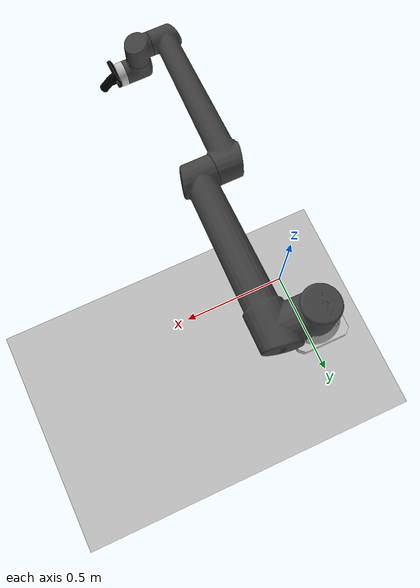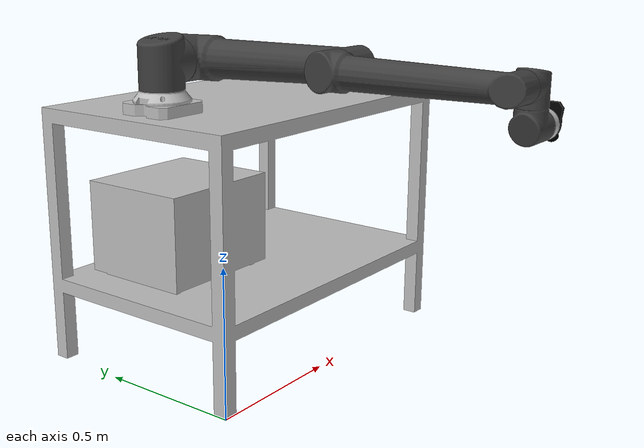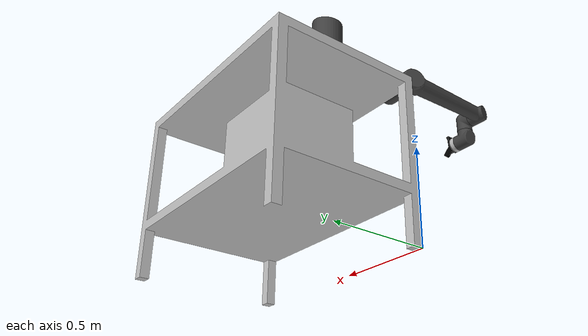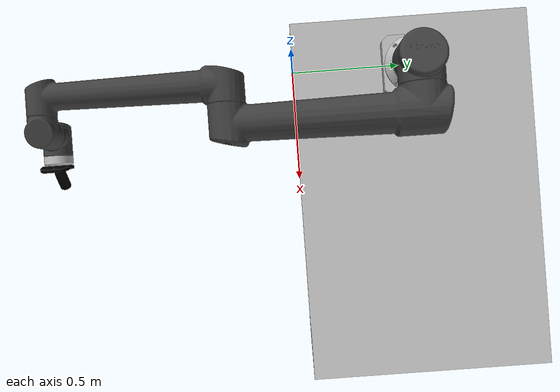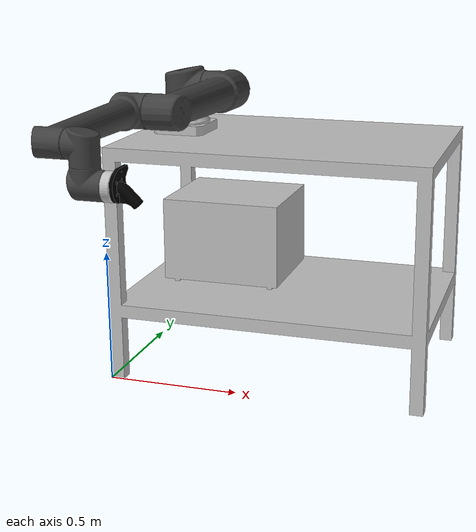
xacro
<?xml version="1.0" encoding="utf-8" ?>
<!-- ur10_description_v3.urdf -->

<robot name="ur10_description_v3" xmlns:xacro="http://ros.org/wiki/xacro">

    <xacro:property name="deg_to_rad" value="0.017453292519943295" />
    <xacro:include filename="$(find ur10_description_v3)/urdf/ft_sensor.gazebo.xacro"/>
    <xacro:include filename="$(find ur10_description_v3)/urdf/kinetic_rgbd.urdf.xacro"/>
    <xacro:include filename="$(find ur10_description_v3)/urdf/kinetic_rgbd.gazebo.xacro"/>

    <xacro:macro name="ur10_robot" params="">

        <link name="table_link">
            <inertial>
                <origin xyz="0.503679778923471 0.436750246454337 0.533162239913515" rpy="0 0 0" />
                <mass value="164.427518164029" />
                <inertia ixx="17.5438109681455" ixy="1.00173029919582" ixz="-0.84554880731535" iyy="27.9962527469498" iyz="0.32261270489944" izz="25.3196927520228" />
            </inertial>
            <visual>
                <origin xyz="0 0 0" rpy="0 0 0" />
                <geometry>
                    <mesh filename="package://ur10_description_v3/meshes/table_link.STL" />
                </geometry>
                <material name="">
                    <color rgba="0.752941176470588 0.752941176470588 0.752941176470588 1" />
                </material>
            </visual>
            <collision>
                <origin xyz="0 0 0" rpy="0 0 0" />
                <geometry>
                    <mesh filename="package://ur10_description_v3/meshes/table_link.STL" />
                </geometry>
            </collision>
        </link>
        <link name="adapter_link">
            <inertial>
                <origin xyz="0.00148762870939384 -5.55111512312578E-17 0.0184969952138566" rpy="0 0 0" />
                <mass value="1.3940393775037" />
                <inertia ixx="0.00480218257555222" ixy="-3.32761202584861E-19" ixz="-6.23136456619299E-09" iyy="0.00460995913579551" iyz="-9.9318015210222E-20" izz="0.00909416459764461" />
            </inertial>
            <visual>
                <origin xyz="0 0 0" rpy="0 0 0" />
                <geometry>
                    <mesh filename="package://ur10_description_v3/meshes/adapter_link.STL" />
                </geometry>
                <material name="">
                    <color rgba="0.752941176470588 0.752941176470588 0.752941176470588 1" />
                </material>
            </visual>
            <collision>
                <origin xyz="0 0 0" rpy="0 0 0" />
                <geometry>
                    <mesh filename="package://ur10_description_v3/meshes/adapter_link.STL" />
                </geometry>
            </collision>
        </link>
        <joint name="adapter_joint" type="fixed">
            <origin xyz="0.17 0.4 0.9" rpy="0 0 0" />
            <parent link="table_link" />
            <child link="adapter_link" />
            <axis xyz="0 0 0" />
        </joint>
        <link name="base_link">
            <inertial>
                <origin xyz="0.0011845 -2.7253E-08 0.017325" rpy="0 0 0" />
                <mass value="0.86268" />
                <inertia ixx="0.0017501" ixy="8.3495E-09" ixz="9.0593E-06" iyy="0.0016637" iyz="-4.5806E-10" izz="0.0032119" />
            </inertial>
            <visual>
                <origin xyz="0 0 0" rpy="0 0 0" />
                <geometry>
                    <mesh filename="package://ur10_description_v3/meshes/base_link.STL" />
                </geometry>
                <material name="">
                    <color rgba="0.75294 0.75294 0.75294 1" />
                </material>
            </visual>
            <collision>
                <origin xyz="0 0 0" rpy="0 0 0" />
                <geometry>
                    <mesh filename="package://ur10_description_v3/meshes/base_link.STL" />
                </geometry>
            </collision>
        </link>
        <joint name="base_joint" type="fixed">
            <origin xyz="0 0 0.037" rpy="0 0 0" />
            <parent link="adapter_link" />
            <child link="base_link" />
            <axis xyz="0 0 0" />
        </joint>
        <link name="shoulder_link">
            <inertial>
                <origin xyz="2.679E-07 0.010024 0.0831" rpy="0 0 0" />
                <mass value="7.778" />
                <inertia ixx="0.012906" ixy="1.6076E-08" ixz="-3.7079E-08" iyy="0.012039" iyz="-0.00053627" izz="0.010755" />
            </inertial>
            <visual>
                <origin xyz="0 0 0" rpy="0 0 0" />
                <geometry>
                    <mesh filename="package://ur10_description_v3/meshes/shoulder_link.STL" />
                </geometry>
                <material name="">
                    <color rgba="0.25098 0.25098 0.25098 1" />
                </material>
            </visual>
            <collision>
                <origin xyz="0 0 0" rpy="0 0 0" />
                <geometry>
                    <mesh filename="package://ur10_description_v3/meshes/shoulder_link.STL" />
                </geometry>
            </collision>
        </link>
        <joint name="shoulder_pan_joint" type="revolute">
            <origin xyz="0 0 0.038" rpy="0 0 -1.57" />
            <parent link="base_link" />
            <child link="shoulder_link" />
            <axis xyz="0 0 1" />
            <limit lower="-6.28" upper="6.28" effort="330" velocity="120" />
        </joint>
        <link name="upper_arm_link">
            <inertial>
                <origin xyz="-0.25443 -2.027E-07 0.082537" rpy="0 0 0" />
                <mass value="12.93" />
                <inertia ixx="0.024456" ixy="3.1971E-08" ixz="0.0078193" iyy="0.52575" iyz="8.3512E-08" izz="0.52417" />
            </inertial>
            <visual>
                <origin xyz="0 0 0" rpy="0 0 0" />
                <geometry>
                    <mesh filename="package://ur10_description_v3/meshes/upper_arm_link.STL" />
                </geometry>
                <material name="">
                    <color rgba="0.25098 0.25098 0.25098 1" />
                </material>
            </visual>
            <collision>
                <origin xyz="0 0 0" rpy="0 0 0" />
                <geometry>
                    <mesh filename="package://ur10_description_v3/meshes/upper_arm_link.STL" />
                </geometry>
            </collision>
        </link>
        <joint name="shoulder_lift_joint" type="revolute">
            <origin xyz="0 0.0859989999999999 0.0882571802206784" rpy="1.5707963267949 0.0240929901040578 3.14159265358979" />
            <parent link="shoulder_link" />
            <child link="upper_arm_link" />
            <axis xyz="0 0 1" />
            <limit lower="-6.28" upper="6.28" effort="330" velocity="120" />
        </joint>
        <link name="forearm_link">
            <inertial>
                <origin xyz="-0.24807 1.9251E-09 -0.034936" rpy="0 0 0" />
                <mass value="3.87" />
                <inertia ixx="0.0067905" ixy="5.4328E-08" ixz="-0.00025402" iyy="0.20899" iyz="7.4389E-09" izz="0.20875" />
            </inertial>
            <visual>
                <origin xyz="0 0 0" rpy="0 0 0" />
                <geometry>
                    <mesh filename="package://ur10_description_v3/meshes/forearm_link.STL" />
                </geometry>
                <material name="">
                    <color rgba="0.25098 0.25098 0.25098 1" />
                </material>
            </visual>
            <collision>
                <origin xyz="0 0 0" rpy="0 0 0" />
                <geometry>
                    <mesh filename="package://ur10_description_v3/meshes/forearm_link.STL" />
                </geometry>
            </collision>
        </link>
        <joint name="elbow_joint" type="revolute">
            <origin xyz="-0.612 0 0" rpy="0 0 0.0242666741712824" />
            <parent link="upper_arm_link" />
            <child link="forearm_link" />
            <axis xyz="0 0 1" />
            <limit lower="-3.14" upper="3.14" effort="150" velocity="180" />
        </joint>
        <link name="wrist_1_link">
            <inertial>
                <origin xyz="8.3814E-09 -0.010045 0.046994" rpy="0 0 0" />
                <mass value="1.96" />
                <inertia ixx="0.0010747" ixy="-1.3405E-12" ixz="4.6386E-10" iyy="0.00088168" iyz="7.862E-05" izz="0.00098347" />
            </inertial>
            <visual>
                <origin xyz="0 0 0" rpy="0 0 0" />
                <geometry>
                    <mesh filename="package://ur10_description_v3/meshes/wrist_1_link.STL" />
                </geometry>
                <material name="">
                    <color rgba="0.25098 0.25098 0.25098 1" />
                </material>
            </visual>
            <collision>
                <origin xyz="0 0 0" rpy="0 0 0" />
                <geometry>
                    <mesh filename="package://ur10_description_v3/meshes/wrist_1_link.STL" />
                </geometry>
            </collision>
        </link>
        <joint name="wrist_1_joint" type="revolute">
            <origin xyz="-0.5716 0 0.0220010000000001" rpy="0 0 -0.000173684067224549" />
            <parent link="forearm_link" />
            <child link="wrist_1_link" />
            <axis xyz="0 0 1" />
            <limit lower="-6.28" upper="6.28" effort="56" velocity="180" />
        </joint>
        <link name="wrist_2_link">
            <inertial>
                <origin xyz="-8.3814E-09 0.010045 0.046994" rpy="0 0 0" />
                <mass value="1.96" />
                <inertia ixx="0.0010747" ixy="-1.3405E-12" ixz="-4.6386E-10" iyy="0.00088168" iyz="-7.862E-05" izz="0.00098347" />
            </inertial>
            <visual>
                <origin xyz="0 0 0" rpy="0 0 0" />
                <geometry>
                    <mesh filename="package://ur10_description_v3/meshes/wrist_2_link.STL" />
                </geometry>
                <material name="">
                    <color rgba="0.25098 0.25098 0.25098 1" />
                </material>
            </visual>
            <collision>
                <origin xyz="0 0 0" rpy="0 0 0" />
                <geometry>
                    <mesh filename="package://ur10_description_v3/meshes/wrist_2_link.STL" />
                </geometry>
            </collision>
        </link>
        <joint name="wrist_2_joint" type="revolute">
            <origin xyz="0 -0.0617000000000001 0.054" rpy="1.5707963267949 0 0" />
            <parent link="wrist_1_link" />
            <child link="wrist_2_link" />
            <axis xyz="0 0 1" />
            <limit lower="-6.28" upper="6.28" effort="56" velocity="180" />
        </joint>
        <link name="wrist_3_link">
            <inertial>
                <origin xyz="2.2204E-16 -1.1102E-16 0.015005" rpy="0 0 0" />
                <mass value="0.202" />
                <inertia ixx="0.00010845" ixy="-6.3527E-22" ixz="8.5217E-21" iyy="0.00010845" iyz="2.1272E-20" izz="0.0001885" />
            </inertial>
            <visual>
                <origin xyz="0 0 0" rpy="0 0 0" />
                <geometry>
                    <mesh filename="package://ur10_description_v3/meshes/wrist_3_link.STL" />
                </geometry>
                <material name="">
                    <color rgba="0.75294 0.75294 0.75294 1" />
                </material>
            </visual>
            <collision>
                <origin xyz="0 0 0" rpy="0 0 0" />
                <geometry>
                    <mesh filename="package://ur10_description_v3/meshes/wrist_3_link.STL" />
                </geometry>
            </collision>
        </link>
        <joint name="wrist_3_joint" type="revolute">
            <origin xyz="0 0.0617 0.054" rpy="-1.5707963267949 0.0141025375343068 0" />
            <parent link="wrist_2_link" />
            <child link="wrist_3_link" />
            <axis xyz="0 0 1" />
            <limit lower="-6.28" upper="6.28" effort="56" velocity="180" />
        </joint>
        <link name="tool0_link">
            <inertial>
                <origin xyz="-9.51811385263568E-09 -0.00040829549117638 -0.063076624107084" rpy="0 0 0" />
                <mass value="0.159494248297753" />
                <inertia ixx="0.000196142213229152" ixy="-3.17147593634008E-12" ixz="-8.16590451397829E-11" iyy="0.000202558472496363" iyz="3.31143649078889E-05" izz="0.000103928487892553" />
            </inertial>
            <visual>
                <origin xyz="0 0 0" rpy="0 0 0" />
                <geometry>
                    <mesh filename="package://ur10_description_v3/meshes/test_finger_link.STL" />
                </geometry>
                <material name="">
                    <color rgba="0 0 0 1" />
                </material>
            </visual>
            <collision>
                <origin xyz="0 0 0" rpy="0 0 0" />
                <geometry>
                    <mesh filename="package://ur10_description_v3/meshes/test_finger_link.STL" />
                </geometry>
            </collision>
        </link>
        <joint name="tool0" type="fixed">
            <origin xyz="0 -0.0486072989450782 0.0984743807368732" rpy="0.785398163397435 0 0" />
            <parent link="wrist_3_link" />
            <child link="tool0_link" />
            <axis xyz="0 0 0" />
        </joint>
        <link name="camera_link">
            <inertial>
                <origin xyz="-1.61524861117535E-05 -0.00212700504491092 -0.0193765848255853" rpy="0 0 0" />
                <mass value="0.0840231018507497" />
                <inertia ixx="8.83086020963579E-06" ixy="4.69402693871799E-10" ixz="-1.85931238714756E-08" iyy="0.00010709697994186" iyz="1.0714392504519E-06" izz="0.000107821135197006" />
            </inertial>
            <collision>
                <origin xyz="0 0 0" rpy="0 0 0" />
                <geometry>
                    <mesh filename="package://ur10_description_v3/meshes/camera_link.STL" />
                </geometry>
            </collision>
        </link>
        <joint name="tool_camera" type="fixed">
            <origin xyz="0 0.0158483827537649 0.0919267022436815" rpy="0.856180071631976 0 0" />
            <parent link="wrist_3_link" />
            <child link="camera_link" />
            <axis xyz="0 0 0" />
        </joint>

        <transmission name="trans_shoulder_pan_joint">
            <type>transmission_interface/SimpleTransmission</type>
            <joint name="shoulder_pan_joint">
                <hardwareInterface>hardware_interface/EffortJointInterface</hardwareInterface>
            </joint>
            <actuator name="shoulder_pan_joint_motor">
                <hardwareInterface>hardware_interface/EffortJointInterface</hardwareInterface>
                <mechanicalReduction>1</mechanicalReduction>
            </actuator>
        </transmission>
        <transmission name="trans_shoulder_lift_joint">
            <type>transmission_interface/SimpleTransmission</type>
            <joint name="shoulder_lift_joint">
                <hardwareInterface>hardware_interface/EffortJointInterface</hardwareInterface>
            </joint>
            <actuator name="shoulder_lift_joint_motor">
                <hardwareInterface>hardware_interface/EffortJointInterface</hardwareInterface>
                <mechanicalReduction>1</mechanicalReduction>
            </actuator>
        </transmission>
        <transmission name="trans_elbow_joint">
            <type>transmission_interface/SimpleTransmission</type>
            <joint name="elbow_joint">
                <hardwareInterface>hardware_interface/EffortJointInterface</hardwareInterface>
            </joint>
            <actuator name="elbow_joint_motor">
                <hardwareInterface>hardware_interface/EffortJointInterface</hardwareInterface>
                <mechanicalReduction>1</mechanicalReduction>
            </actuator>
        </transmission>
        <transmission name="trans_wrist_1_joint">
            <type>transmission_interface/SimpleTransmission</type>
            <joint name="wrist_1_joint">
                <hardwareInterface>hardware_interface/EffortJointInterface</hardwareInterface>
            </joint>
            <actuator name="wrist_1_joint_motor">
                <hardwareInterface>hardware_interface/EffortJointInterface</hardwareInterface>
                <mechanicalReduction>1</mechanicalReduction>
            </actuator>
        </transmission>
        <transmission name="trans_wrist_2_joint">
            <type>transmission_interface/SimpleTransmission</type>
            <joint name="wrist_2_joint">
                <hardwareInterface>hardware_interface/EffortJointInterface</hardwareInterface>
            </joint>
            <actuator name="wrist_2_joint_motor">
                <hardwareInterface>hardware_interface/EffortJointInterface</hardwareInterface>
                <mechanicalReduction>1</mechanicalReduction>
            </actuator>
        </transmission>
        <transmission name="trans_wrist_3_joint">
            <type>transmission_interface/SimpleTransmission</type>
            <joint name="wrist_3_joint">
                <hardwareInterface>hardware_interface/EffortJointInterface</hardwareInterface>
            </joint>
            <actuator name="wrist_3_joint_motor">
                <hardwareInterface>hardware_interface/EffortJointInterface</hardwareInterface>
                <mechanicalReduction>1</mechanicalReduction>
            </actuator>
        </transmission>

        <!-- force/torque sensor -->
        <xacro:ft_sensor_gazebo joint="wrist_3_joint"/>

        <!-- camera -->
        <xacro:kinetic_rgb name="rgbd_camera" parent="camera">
            <origin xyz="0 0 0.1" rpy="0 0 0"/>
            <origin xyz="0 0 0.1" rpy="0 0 0"/>
        </xacro:kinetic_rgb>

        <gazebo>
        <plugin name="gazebo_ros_control" filename="libgazebo_ros_control.so">
        </plugin>
        </gazebo>

        <!-- ROS-Industrial 'base' frame: base_link to UR 'Base' Coordinates transform -->
        <link name="base"/>
        <joint name="base_link-base_fixed_joint" type="fixed">
        <origin xyz="0 0 0" rpy="0 0 3.14"/>
        <parent link="base_link"/>
        <child link="base"/>
        </joint>
    </xacro:macro>

    <!-- call -->
    <xacro:ur10_robot/>

</robot>

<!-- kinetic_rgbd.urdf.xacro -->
<robot xmlns:xacro="http://ros.org/wiki/xacro">

    <!-- Define the conversion constant -->
    <xacro:property name="deg_to_rad" value="0.017453292519943295" />
    <xacro:include filename="$(find ur10_description_v3)/urdf/kinetic_rgbd.gazebo.xacro"/>

    <xacro:macro name="dummy_inertial">
        <inertial>
            <origin xyz="0 0 0" rpy="0 0 0"/>
            <mass value="0.001"/>
            <inertia ixx="0.00001" ixy="0" ixz="0"
                    iyy="0.00001" iyz="0"
                    izz="0.00001"/>
        </inertial>
    </xacro:macro>

    <xacro:macro name="kinetic_rgb" params="name parent *origin *optical_origin">

        <!-- frames in the center of the camera -->
        <joint name="${name}_joint" type="fixed">
            <xacro:insert_block name="origin"/>
            <parent link="${parent}_link"/>
            <child link="${name}_link"/>
        </joint>

        <link name="${name}_link">
            <inertial>
                <origin xyz="-0.00936000000 -0.00003000000 -0.00273000000" rpy="0 0 0"/>
                <mass value="0.21970000000"/>
                <inertia ixx="0.00000429247" ixy="0.00000000000" ixz="0.00000002565"
                        iyy="0.00000008027" iyz="0.00000000000"
                        izz="0.00000427339"/>
            </inertial>

        </link>

        <joint name="${name}_optical_joint" type="fixed">
            <xacro:insert_block name="optical_origin"/>
            <parent link="${name}_link"/>
            <child link="${name}_optical_frame"/>
        </joint>

        <link name="${name}_optical_frame">
            <xacro:dummy_inertial/>
        </link>

        <!-- Depth sensor frames -->
        <joint name="${name}_depth_joint" type="fixed">
            <origin xyz="0.049 0.0 0.0" rpy="0 0 0"/>   <!--origin xyz="0.0 0.049 0.0" rpy="0 0 0"-->
            <parent link="${name}_link"/>
            <child link="${name}_depth_frame"/>
        </joint>

        <link name="${name}_depth_frame">
            <xacro:dummy_inertial/>
        </link>

        <joint name="${name}_depth_optical_joint" type="fixed">
            <origin xyz="0 0 0" rpy="${0 * deg_to_rad} 0.0 ${0 * deg_to_rad}"/>  <!-- -90 deg_to_rad - x&z -->
            <parent link="${name}_depth_frame"/>
            <child link="${name}_depth_optical_frame"/>
        </joint>

        <link name="${name}_depth_optical_frame">
            <xacro:dummy_inertial/>
        </link>

        <!-- RGB sensor frames -->
        <joint name="${name}_rgb_joint" type="fixed">
            <origin xyz="0.0 0.022 0.0" rpy="0 0 0"/>
            <parent link="${name}_link"/>
            <child link="${name}_rgb_frame"/>
        </joint>

        <link name="${name}_rgb_frame">
            <xacro:dummy_inertial/>
        </link>

        <joint name="${name}_rgb_optical_joint" type="fixed">
            <origin xyz="0 0 0" rpy="${0 * deg_to_rad} 0.0 ${0 * deg_to_rad}"/> <!-- -90 deg_to_rad - x&z -->
            <parent link="${name}_rgb_frame"/>
            <child link="${name}_rgb_optical_frame"/>
        </joint>

        <link name="${name}_rgb_optical_frame">
            <xacro:dummy_inertial/>
        </link>
    </xacro:macro>

    <!-- Add feedback for camera-related joints -->
    <gazebo reference="rgbd_camera_joint">
      <provideFeedback>true</provideFeedback>
    </gazebo>

    <gazebo reference="rgbd_camera_optical_joint">
      <provideFeedback>true</provideFeedback>
    </gazebo>

    <gazebo reference="rgbd_camera_depth_joint">
      <provideFeedback>true</provideFeedback>
    </gazebo>

    <gazebo reference="rgbd_camera_depth_optical_joint">
      <provideFeedback>true</provideFeedback>
    </gazebo>

    <gazebo reference="rgbd_camera_rgb_joint">
      <provideFeedback>true</provideFeedback>
    </gazebo>

    <gazebo reference="rgbd_camera_rgb_optical_joint">
      <provideFeedback>true</provideFeedback>
    </gazebo>

    <!-- Pass the 'name' parameter when calling the gazebo macro -->
    <xacro:kinetic_rgbd_camera_gazebo name="rgbd_camera"/>
</robot>

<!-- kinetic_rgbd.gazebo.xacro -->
<robot xmlns:xacro="http://ros.org/wiki/xacro">
  <!-- Define the conversion constant -->
  <xacro:property name="deg_to_rad" value="0.017453292519943295" />

  <xacro:macro name="kinetic_rgbd_camera_gazebo" params="name">
    <gazebo reference="${name}_link">
      <!-- Depth (IR) -->
      <sensor type="depth" name="${name}_frame_sensor">
        <always_on>true</always_on>
        <update_rate>6.0</update_rate>

        <camera>
          <horizontal_fov>${58.0 * deg_to_rad}</horizontal_fov>
          <image>
            <format>R8G8B8</format>
            <width>800</width>
            <height>600</height>
          </image>
          <clip>
            <near>0.05</near>
            <far>1.5</far>
          </clip>
        </camera>

        <plugin name="${name}_frame_controller" filename="libgazebo_ros_openni_kinect.so">
          <alwaysOn>true</alwaysOn>
          <updateRate>6.0</updateRate>
          <cameraName>${name}</cameraName>
          <imageTopicName>ir/image_raw</imageTopicName>
          <cameraInfoTopicName>ir/camera_info</cameraInfoTopicName>
          <depthImageTopicName>depth/image_raw</depthImageTopicName>
          <depthImageCameraInfoTopicName>depth/camera_info</depthImageCameraInfoTopicName>
          <pointCloudTopicName>depth/points</pointCloudTopicName>
          <frameName>${name}_optical_frame</frameName>
          <pointCloudCutoff>0.05</pointCloudCutoff>
          <pointCloudCutoffMax>5</pointCloudCutoffMax>

          <rangeMax>1.5</rangeMax>
        </plugin>
      </sensor>

      <!-- RGB -->

      <sensor type="depth" name="${name}_frame_sensor">
        <always_on>true</always_on>
        <update_rate>6.0</update_rate>

        <camera>
          <horizontal_fov>${58.0 * deg_to_rad}</horizontal_fov>
          <image>
            <format>R8G8B8</format>
            <width>800</width>
            <height>600</height>
          </image>
          <clip>
            <near>0.05</near>
            <far>1.5</far>
          </clip>
        </camera>

        <plugin name="${name}_frame_controller" filename="libgazebo_ros_openni_kinect.so">
          <alwaysOn>true</alwaysOn>
          <updateRate>6.0</updateRate>
          <cameraName>${name}</cameraName>
          <imageTopicName>rgb/image_raw</imageTopicName>
          <cameraInfoTopicName>rgb/camera_info</cameraInfoTopicName>
          <pointCloudTopicName>rgb/points</pointCloudTopicName>
          <depthImageTopicName>depth/image_raw</depthImageTopicName>
          <depthImageCameraInfoTopicName>depth/camera_info</depthImageCameraInfoTopicName>
          <frameName>${name}_optical_frame</frameName>
          <pointCloudCutoff>0.05</pointCloudCutoff>
          <pointCloudCutoffMax>5</pointCloudCutoffMax>
          <rangeMax>1.5</rangeMax>
        </plugin>
      </sensor>

      <!-- Add feedback for camera link -->
      <provideFeedback>true</provideFeedback>

    </gazebo>
  </xacro:macro>
</robot>
